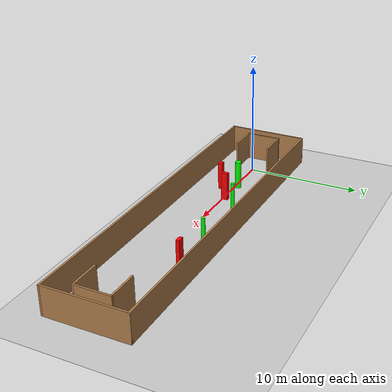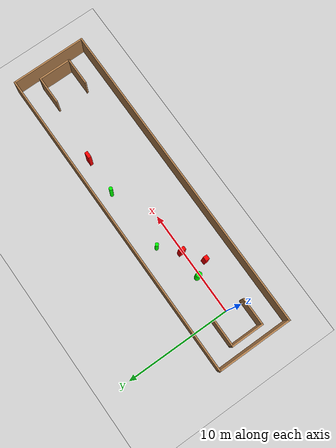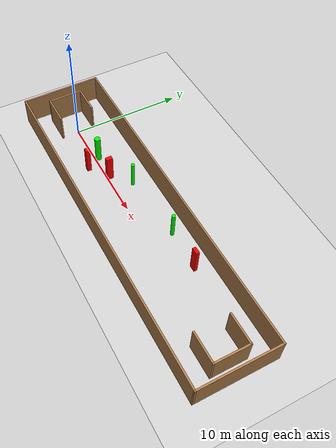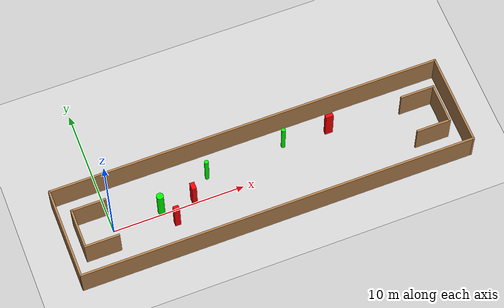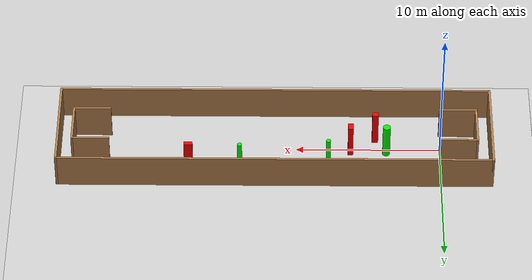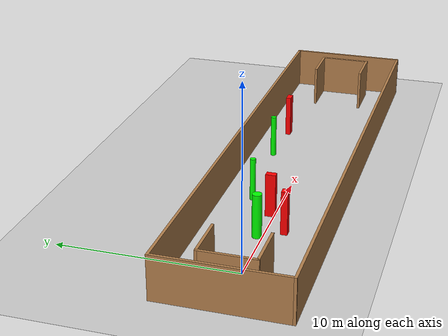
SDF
<sdf version="1.7">
 <world name="default">
  <light name="sun" type="directional">
   <pose>0 0 10 0 -0 0</pose>
   <diffuse>0.8 0.8 0.8 1</diffuse>
   <specular>0.2 0.2 0.2 1</specular>
   <attenuation>
    <range>1000</range>
    <constant>0.9</constant>
    <linear>0.01</linear>
    <quadratic>0.001</quadratic>
   </attenuation>
   <direction>-0.5 0.1 -0.9</direction>
   <spot><inner_angle>0</inner_angle><outer_angle>0</outer_angle><falloff>0</falloff></spot>
  </light>
  <model name="ground_plane">
   <static>1</static>
   <link name="link">
    <collision name="collision">
     <geometry><plane><normal>0 0 1</normal><size>100 100</size></plane></geometry>
     <surface>
      <contact><collide_bitmask>65535</collide_bitmask></contact>
      <friction><ode><mu>100</mu><mu2>50</mu2></ode></friction>
     </surface>
    </collision>
    <visual name="visual">
     <cast_shadows>0</cast_shadows>
     <geometry><plane><normal>0 0 1</normal><size>100 100</size></plane></geometry>
     <material>
      <script><uri>file://media/materials/scripts/gazebo.material</uri><name>Gazebo/Grey</name></script>
     </material>
    </visual>
   </link>
  </model>
  <gravity>0 0 -9.8</gravity>
  <magnetic_field>6e-06 2.3e-05 -4.2e-05</magnetic_field>
  <atmosphere type="adiabatic"/>
  <physics type="ode">
   <max_step_size>0.001</max_step_size>
   <real_time_factor>1</real_time_factor>
   <real_time_update_rate>1000</real_time_update_rate>
  </physics>
  <scene><ambient>0.4 0.4 0.4 1</ambient><background>0.7 0.7 0.7 1</background><shadows>1</shadows></scene>
  <spherical_coordinates>
   <surface_model>EARTH_WGS84</surface_model>
   <latitude_deg>0</latitude_deg>
   <longitude_deg>0</longitude_deg>
   <elevation>0</elevation>
   <heading_deg>0</heading_deg>
  </spherical_coordinates>
  <model name="my_base_walls">
   <link name="Wall_0">
    <collision name="Wall_0_Collision">
     <geometry><box><size>7.15 0.15 2.5</size></box></geometry>
     <pose>0 0 1.25 0 -0 0</pose>
    </collision>
    <visual name="Wall_0_Visual">
     <pose>0 0 1.25 0 -0 0</pose>
     <geometry><box><size>7.15 0.15 2.5</size></box></geometry>
     <material>
      <script><uri>file://media/materials/scripts/gazebo.material</uri><name>Gazebo/Wood</name></script>
      <ambient>1 1 1 1</ambient>
     </material>
     <meta><layer>0</layer></meta>
    </visual>
    <pose>-15 0 0 0 -0 1.5708</pose>
   </link>
   <link name="Wall_10">
    <collision name="Wall_10_Collision">
     <geometry><box><size>2.65 0.15 2.5</size></box></geometry>
     <pose>0 0 1.25 0 -0 0</pose>
    </collision>
    <visual name="Wall_10_Visual">
     <pose>0 0 1.25 0 -0 0</pose>
     <geometry><box><size>2.65 0.15 2.5</size></box></geometry>
     <material>
      <script><uri>file://media/materials/scripts/gazebo.material</uri><name>Gazebo/Wood</name></script>
      <ambient>1 1 1 1</ambient>
     </material>
     <meta><layer>0</layer></meta>
    </visual>
    <pose>-12.75 -1.5 0 0 -0 0</pose>
   </link>
   <link name="Wall_12">
    <collision name="Wall_12_Collision">
     <geometry><box><size>2.65 0.15 2.5</size></box></geometry>
     <pose>0 0 1.25 0 -0 0</pose>
    </collision>
    <visual name="Wall_12_Visual">
     <pose>0 0 1.25 0 -0 0</pose>
     <geometry><box><size>2.65 0.15 2.5</size></box></geometry>
     <material>
      <script><uri>file://media/materials/scripts/gazebo.material</uri><name>Gazebo/Wood</name></script>
      <ambient>1 1 1 1</ambient>
     </material>
     <meta><layer>0</layer></meta>
    </visual>
    <pose>-12.75 1.5 0 0 -0 0</pose>
   </link>
   <link name="Wall_14">
    <collision name="Wall_14_Collision">
     <geometry><box><size>3.15 0.15 2.5</size></box></geometry>
     <pose>0 0 1.25 0 -0 0</pose>
    </collision>
    <visual name="Wall_14_Visual">
     <pose>0 0 1.25 0 -0 0</pose>
     <geometry><box><size>3.15 0.15 2.5</size></box></geometry>
     <material>
      <script><uri>file://media/materials/scripts/gazebo.material</uri><name>Gazebo/Wood</name></script>
      <ambient>1 1 1 1</ambient>
     </material>
     <meta><layer>0</layer></meta>
    </visual>
    <pose>14 0 0 0 -0 -1.5708</pose>
   </link>
   <link name="Wall_15">
    <collision name="Wall_15_Collision">
     <geometry><box><size>2.65 0.15 2.5</size></box></geometry>
     <pose>0 0 1.25 0 -0 0</pose>
    </collision>
    <visual name="Wall_15_Visual">
     <pose>0 0 1.25 0 -0 0</pose>
     <geometry><box><size>2.65 0.15 2.5</size></box></geometry>
     <material>
      <script><uri>file://media/materials/scripts/gazebo.material</uri><name>Gazebo/Wood</name></script>
      <ambient>1 1 1 1</ambient>
     </material>
     <meta><layer>0</layer></meta>
    </visual>
    <pose>12.75 -1.5 0 0 -0 3.14159</pose>
   </link>
   <link name="Wall_17">
    <collision name="Wall_17_Collision">
     <geometry><box><size>2.65 0.15 2.5</size></box></geometry>
     <pose>0 0 1.25 0 -0 0</pose>
    </collision>
    <visual name="Wall_17_Visual">
     <pose>0 0 1.25 0 -0 0</pose>
     <geometry><box><size>2.65 0.15 2.5</size></box></geometry>
     <material>
      <script><uri>file://media/materials/scripts/gazebo.material</uri><name>Gazebo/Wood</name></script>
      <ambient>1 1 1 1</ambient>
     </material>
     <meta><layer>0</layer></meta>
    </visual>
    <pose>12.75 1.5 0 0 -0 3.14159</pose>
   </link>
   <link name="Wall_2">
    <collision name="Wall_2_Collision">
     <geometry><box><size>30.15 0.15 2.5</size></box></geometry>
     <pose>0 0 1.25 0 -0 0</pose>
    </collision>
    <visual name="Wall_2_Visual">
     <pose>0 0 1.25 0 -0 0</pose>
     <geometry><box><size>30.15 0.15 2.5</size></box></geometry>
     <material>
      <script><uri>file://media/materials/scripts/gazebo.material</uri><name>Gazebo/Wood</name></script>
      <ambient>1 1 1 1</ambient>
     </material>
     <meta><layer>0</layer></meta>
    </visual>
    <pose>-0 -3.5 0 0 -0 0</pose>
   </link>
   <link name="Wall_4">
    <collision name="Wall_4_Collision">
     <geometry><box><size>30.15 0.15 2.5</size></box></geometry>
     <pose>0 0 1.25 0 -0 0</pose>
    </collision>
    <visual name="Wall_4_Visual">
     <pose>0 0 1.25 0 -0 0</pose>
     <geometry><box><size>30.15 0.15 2.5</size></box></geometry>
     <material>
      <script><uri>file://media/materials/scripts/gazebo.material</uri><name>Gazebo/Wood</name></script>
      <ambient>1 1 1 1</ambient>
     </material>
     <meta><layer>0</layer></meta>
    </visual>
    <pose>-0 3.5 0 0 -0 0</pose>
   </link>
   <link name="Wall_6">
    <collision name="Wall_6_Collision">
     <geometry><box><size>7.15 0.15 2.5</size></box></geometry>
     <pose>0 0 1.25 0 -0 0</pose>
    </collision>
    <visual name="Wall_6_Visual">
     <pose>0 0 1.25 0 -0 0</pose>
     <geometry><box><size>7.15 0.15 2.5</size></box></geometry>
     <material>
      <script><uri>file://media/materials/scripts/gazebo.material</uri><name>Gazebo/Wood</name></script>
      <ambient>1 1 1 1</ambient>
     </material>
     <meta><layer>0</layer></meta>
    </visual>
    <pose>15 0 0 0 -0 -1.5708</pose>
   </link>
   <link name="Wall_9">
    <collision name="Wall_9_Collision">
     <geometry><box><size>3.15 0.15 2.5</size></box></geometry>
     <pose>0 0 1.25 0 -0 0</pose>
    </collision>
    <visual name="Wall_9_Visual">
     <pose>0 0 1.25 0 -0 0</pose>
     <geometry><box><size>3.15 0.15 2.5</size></box></geometry>
     <material>
      <script><uri>file://media/materials/scripts/gazebo.material</uri><name>Gazebo/Wood</name></script>
      <ambient>1 1 1 1</ambient>
     </material>
     <meta><layer>0</layer></meta>
    </visual>
    <pose>-14 0 0 0 -0 -1.5708</pose>
   </link>
   <static>1</static>
   <pose>11.5 0 0 0 -0 0</pose>
  </model>
  <model name="cylinder1">
   <static>1</static>
   <link name="link">
    <inertial>
     <mass>1</mass>
     <inertia><ixx>0.5</ixx><ixy>0</ixy><ixz>0</ixz><iyy>0.5</iyy><iyz>0</iyz><izz>1</izz></inertia>
    </inertial>
    <collision name="collision">
     <geometry><cylinder><radius>0.16196490427819799</radius><length>2.5</length></cylinder></geometry>
    </collision>
    <visual name="visual">
     <geometry><cylinder><radius>0.16196490427819799</radius><length>2.5</length></cylinder></geometry>
     <material>
      <ambient>0 1 0 1</ambient>
      <diffuse>0 1 0 1</diffuse>
      <specular>0.1 0.1 0.1 1</specular>
      <emissive>0 0 0 0</emissive>
     </material>
    </visual>
   </link>
   <pose>7.792027046814184 1.6779576025834837 1.25 0 0 0</pose>
  </model>
  <model name="cylinder2">
   <static>1</static>
   <link name="link">
    <inertial>
     <mass>1</mass>
     <inertia><ixx>0.5</ixx><ixy>0</ixy><ixz>0</ixz><iyy>0.5</iyy><iyz>0</iyz><izz>1</izz></inertia>
    </inertial>
    <collision name="collision">
     <geometry><cylinder><radius>0.2633764047952959</radius><length>2.5</length></cylinder></geometry>
    </collision>
    <visual name="visual">
     <geometry><cylinder><radius>0.2633764047952959</radius><length>2.5</length></cylinder></geometry>
     <material>
      <ambient>0 1 0 1</ambient>
      <diffuse>0 1 0 1</diffuse>
      <specular>0.1 0.1 0.1 1</specular>
      <emissive>0 0 0 0</emissive>
     </material>
    </visual>
   </link>
   <pose>3.7478949531820334 0.3075600981152764 1.25 0 0 0</pose>
  </model>
  <model name="cylinder3">
   <static>1</static>
   <link name="link">
    <inertial>
     <mass>1</mass>
     <inertia><ixx>0.5</ixx><ixy>0</ixy><ixz>0</ixz><iyy>0.5</iyy><iyz>0</iyz><izz>1</izz></inertia>
    </inertial>
    <collision name="collision">
     <geometry><cylinder><radius>0.16349023141639543</radius><length>2.5</length></cylinder></geometry>
    </collision>
    <visual name="visual">
     <geometry><cylinder><radius>0.16349023141639543</radius><length>2.5</length></cylinder></geometry>
     <material>
      <ambient>0 1 0 1</ambient>
      <diffuse>0 1 0 1</diffuse>
      <specular>0.1 0.1 0.1 1</specular>
      <emissive>0 0 0 0</emissive>
     </material>
    </visual>
   </link>
   <pose>13.918755324218026 2.10372399011076 1.25 0 0 0</pose>
  </model>
  <model name="box1">
   <static>1</static>
   <link name="link">
    <inertial>
     <mass>1</mass>
     <inertia><ixx>0.083</ixx><ixy>0</ixy><ixz>0</ixz><iyy>0.083</iyy><iyz>0</iyz><izz>0.083</izz></inertia>
    </inertial>
    <collision name="collision">
     <geometry><box><size>0.595745133013207 0.29438280493056945 2.5</size></box></geometry>
    </collision>
    <visual name="visual">
     <geometry><box><size>0.595745133013207 0.29438280493056945 2.5</size></box></geometry>
     <material>
      <ambient>1 0 0 1</ambient>
      <diffuse>1 0 0 1</diffuse>
      <specular>0.1 0.1 0.1 1</specular>
      <emissive>0 0 0 0</emissive>
     </material>
    </visual>
    <sensor name="my_contact" type="contact">
     <contact><collision>box_collision</collision><topic>__default_topic__</topic></contact>
    </sensor>
   </link>
   <pose>17.462666422637966 2.0002214717213684 1.25 0 0 0</pose>
  </model>
  <model name="box2">
   <static>1</static>
   <link name="link">
    <inertial>
     <mass>1</mass>
     <inertia><ixx>0.083</ixx><ixy>0</ixy><ixz>0</ixz><iyy>0.083</iyy><iyz>0</iyz><izz>0.083</izz></inertia>
    </inertial>
    <collision name="collision">
     <geometry><box><size>0.4272665167952482 0.37146941733920835 2.5</size></box></geometry>
    </collision>
    <visual name="visual">
     <geometry><box><size>0.4272665167952482 0.37146941733920835 2.5</size></box></geometry>
     <material>
      <ambient>1 0 0 1</ambient>
      <diffuse>1 0 0 1</diffuse>
      <specular>0.1 0.1 0.1 1</specular>
      <emissive>0 0 0 0</emissive>
     </material>
    </visual>
    <sensor name="my_contact" type="contact">
     <contact><collision>box_collision</collision><topic>__default_topic__</topic></contact>
    </sensor>
   </link>
   <pose>4.509018906443032 -0.9982003559158787 1.25 0 0 0</pose>
  </model>
  <model name="box3">
   <static>1</static>
   <link name="link">
    <inertial>
     <mass>1</mass>
     <inertia><ixx>0.083</ixx><ixy>0</ixy><ixz>0</ixz><iyy>0.083</iyy><iyz>0</iyz><izz>0.083</izz></inertia>
    </inertial>
    <collision name="collision">
     <geometry><box><size>0.3543319911137699 0.5640096715180541 2.5</size></box></geometry>
    </collision>
    <visual name="visual">
     <geometry><box><size>0.3543319911137699 0.5640096715180541 2.5</size></box></geometry>
     <material>
      <ambient>1 0 0 1</ambient>
      <diffuse>1 0 0 1</diffuse>
      <specular>0.1 0.1 0.1 1</specular>
      <emissive>0 0 0 0</emissive>
     </material>
    </visual>
    <sensor name="my_contact" type="contact">
     <contact><collision>box_collision</collision><topic>__default_topic__</topic></contact>
    </sensor>
   </link>
   <pose>6.2350362519628515 0.21817813239208794 1.25 0 0 0</pose>
  </model>
 </world>
</sdf>
